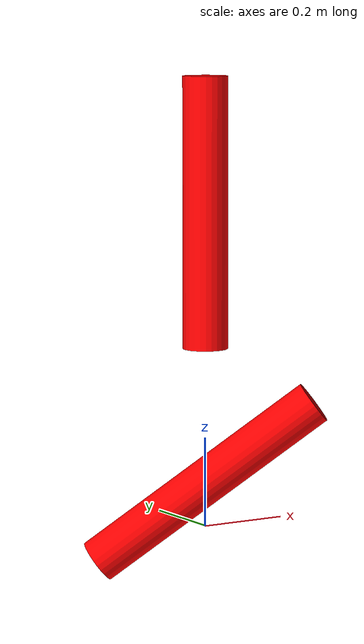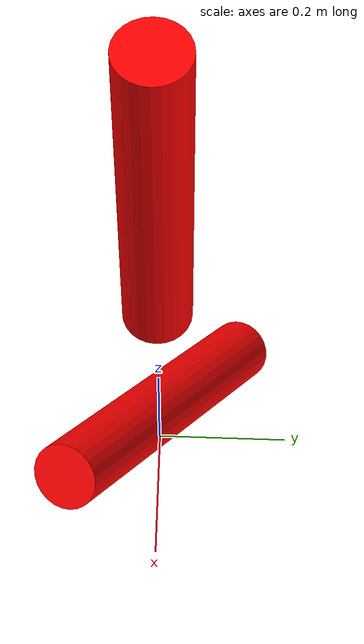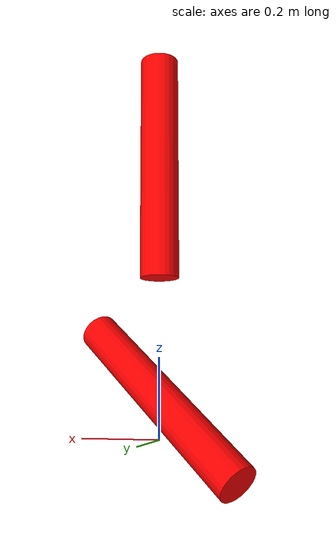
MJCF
<mujoco>
  <worldbody>
    <light name="top" pos="0 0 1"/>

    <!-- Base link (parent) -->
    <body name="base_link" pos="0 0 0">

      <!-- First link -->
      <body name="link_1" pos="0 0 0.1">
        <joint name="joint_1" type="hinge" axis="1 1 0" pos="0 0 -0.1" damping="0.5"/>
        <geom name="cylinder_1" type="cylinder" size=".05 .3" rgba="1 0 0 1" euler="35 43 0"/>
        <!-- Second link -->
        <body name="link_2" pos="0 0 0.6">
          <joint name="joint_2" type="hinge" axis="0 1 0" pos="0 0 -0.3" damping="0.5"/>
          <geom name="cylinder_2" type="cylinder" size=".05 .3" rgba="1 0 0 1"/>
        </body>
      </body>
    </body>

  </worldbody>
</mujoco>
